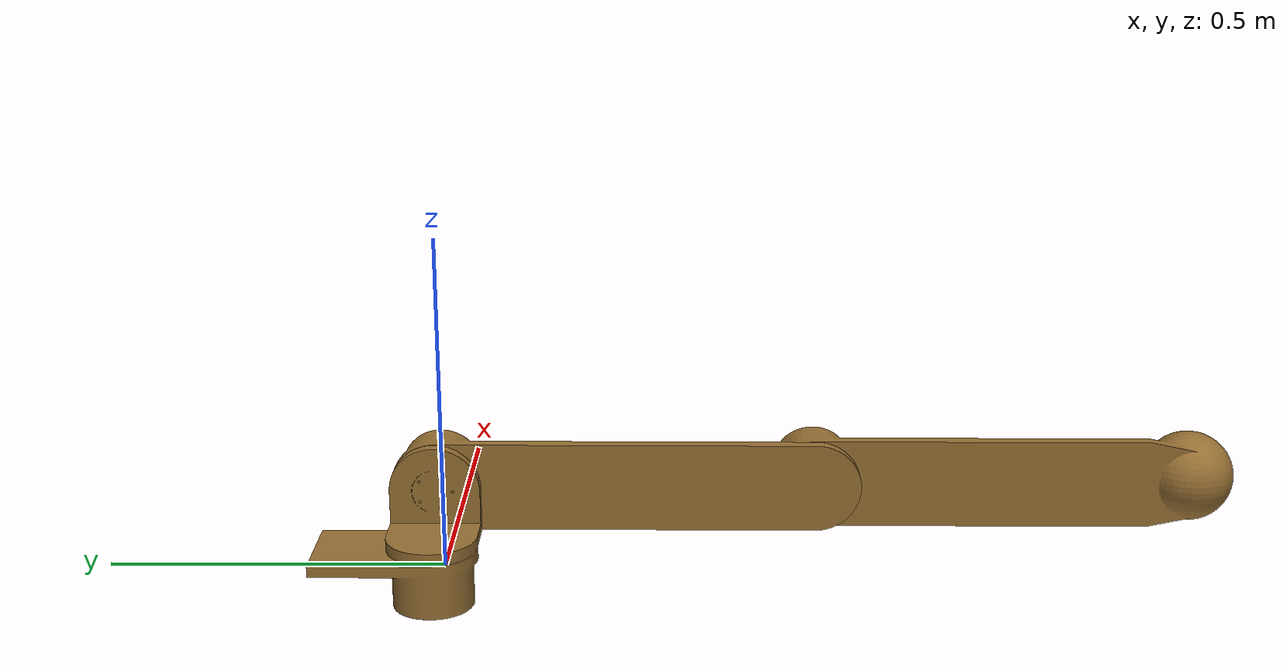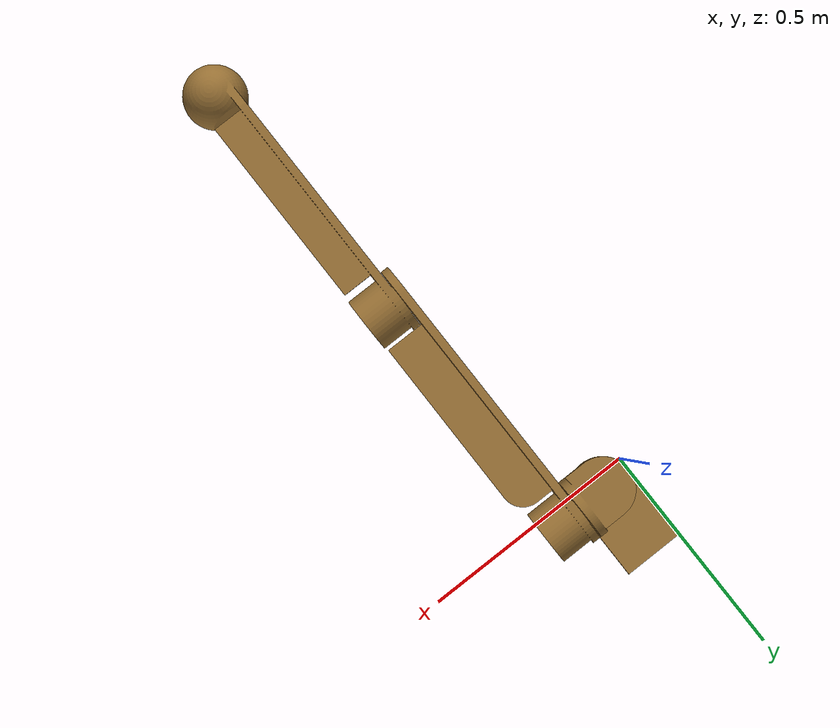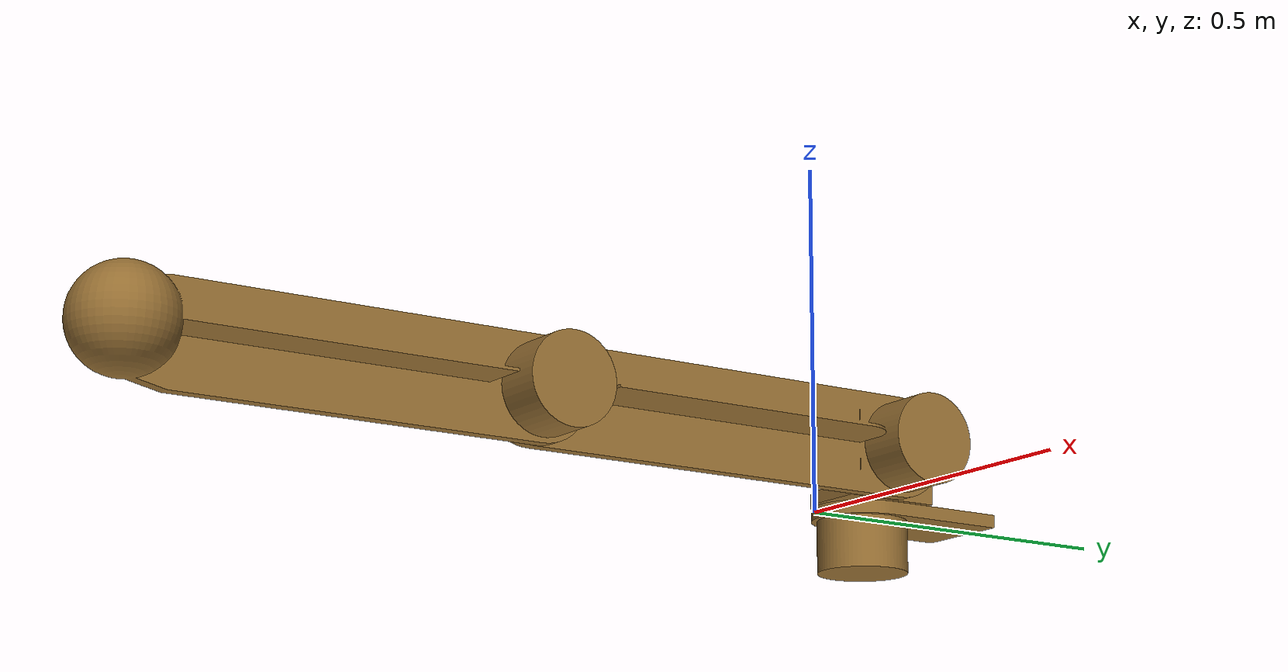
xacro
<?xml version="1.0" ?>
<robot name="robot_to_export" xmlns:xacro="http://www.ros.org/wiki/xacro">

<!-- Define materials -->
<material name="wood">
  <color rgba="0.588 0.435 0.200 1.000"/>
</material>

<!-- Define the links -->

<link name="base_link">
  <inertial>
    <origin xyz="0.06959999984396244 0.03221502682625722 -0.05238610106605037" rpy="0 0 0"/>
    <mass value="7.199217531279626"/>
    <inertia ixx="0.013612" iyy="0.011302" izz="0.016116" ixy="0.0" iyz="-0.000837" ixz="-0.0"/>
  </inertial>
  <visual>
    <origin xyz="0 0 0" rpy="0 0 0"/>
    <geometry>
      <mesh filename="package://robot_to_export_description/meshes/base_link.stl" scale="0.001 0.001 0.001"/>
    </geometry>
    <material name="wood"/>
  </visual>
  <collision>
    <origin xyz="0 0 0" rpy="0 0 0"/>
    <geometry>
      <mesh filename="package://robot_to_export_description/meshes/base_link.stl" scale="0.001 0.001 0.001"/>
    </geometry>
  </collision>
</link>

<link name="hip-thigh-joint_1">
  <inertial>
    <origin xyz="0.02747761997112301 -7.148793887779697e-05 0.03529738098375114" rpy="0 0 0"/>
    <mass value="0.37008143562789914"/>
    <inertia ixx="0.001023" iyy="0.001077" izz="0.001036" ixy="1e-06" iyz="1e-06" ixz="-0.000317"/>
  </inertial>
  <visual>
    <origin xyz="-0.0696 -0.029307 0.001" rpy="0 0 0"/>
    <geometry>
      <mesh filename="package://robot_to_export_description/meshes/hip-thigh-joint_1.stl" scale="0.001 0.001 0.001"/>
    </geometry>
    <material name="wood"/>
  </visual>
  <collision>
    <origin xyz="-0.0696 -0.029307 0.001" rpy="0 0 0"/>
    <geometry>
      <mesh filename="package://robot_to_export_description/meshes/hip-thigh-joint_1.stl" scale="0.001 0.001 0.001"/>
    </geometry>
  </collision>
</link>

<link name="thigh_1">
  <inertial>
    <origin xyz="0.04834399984546503 -0.04326444191945761 -0.0003808122135104397" rpy="0 0 0"/>
    <mass value="7.995931898494293"/>
    <inertia ixx="0.150858" iyy="0.013583" izz="0.148494" ixy="-0.011461" iyz="0.000132" ixz="2.6e-05"/>
  </inertial>
  <visual>
    <origin xyz="-0.1386 -0.029307 -0.069" rpy="0 0 0"/>
    <geometry>
      <mesh filename="package://robot_to_export_description/meshes/thigh_1.stl" scale="0.001 0.001 0.001"/>
    </geometry>
    <material name="wood"/>
  </visual>
  <collision>
    <origin xyz="-0.1386 -0.029307 -0.069" rpy="0 0 0"/>
    <geometry>
      <mesh filename="package://robot_to_export_description/meshes/thigh_1.stl" scale="0.001 0.001 0.001"/>
    </geometry>
  </collision>
</link>

<link name="shin_1">
  <inertial>
    <origin xyz="0.04888140805528815 -0.12357772921141474 -0.00032553364531962004" rpy="0 0 0"/>
    <mass value="9.353708405648327"/>
    <inertia ixx="0.506763" iyy="0.016179" izz="0.504244" ixy="-0.008928" iyz="0.000376" ixz="2.5e-05"/>
  </inertial>
  <visual>
    <origin xyz="-0.1586 0.560693 -0.069" rpy="0 0 0"/>
    <geometry>
      <mesh filename="package://robot_to_export_description/meshes/shin_1.stl" scale="0.001 0.001 0.001"/>
    </geometry>
    <material name="wood"/>
  </visual>
  <collision>
    <origin xyz="-0.1586 0.560693 -0.069" rpy="0 0 0"/>
    <geometry>
      <mesh filename="package://robot_to_export_description/meshes/shin_1.stl" scale="0.001 0.001 0.001"/>
    </geometry>
  </collision>
</link>

<joint name="hip_pitch" type="continuous">
  <origin xyz="0.0696 0.029307 -0.001" rpy="0 0 0"/>
  <parent link="base_link"/>
  <child link="hip-thigh-joint_1"/>
  <axis xyz="0.0 -0.0 1.0"/>
</joint>

<joint name="hip_roll" type="continuous">
  <origin xyz="0.069 0.0 0.07" rpy="0 0 0"/>
  <parent link="hip-thigh-joint_1"/>
  <child link="thigh_1"/>
  <axis xyz="1.0 0.0 0.0"/>
</joint>

<joint name="knee_roll" type="continuous">
  <origin xyz="0.02 -0.59 0.0" rpy="0 0 0"/>
  <parent link="thigh_1"/>
  <child link="shin_1"/>
  <axis xyz="1.0 0.0 0.0"/>
</joint>

</robot>
